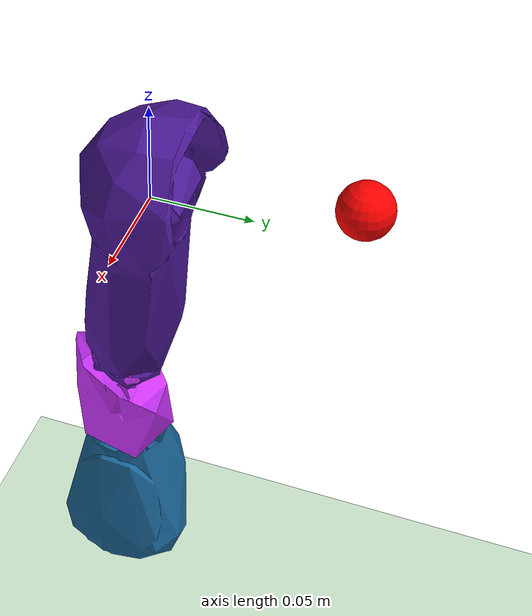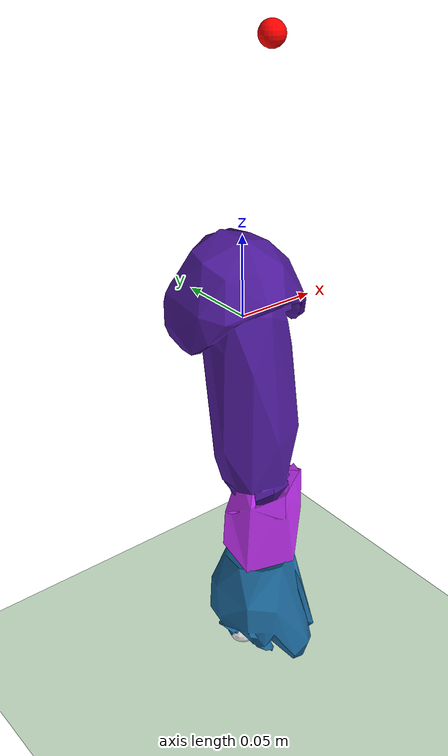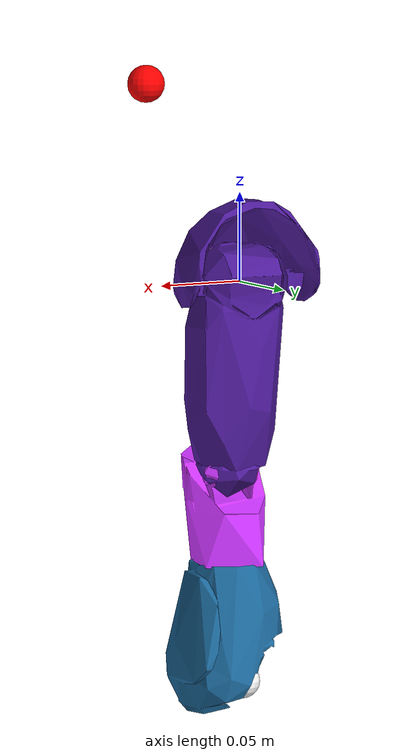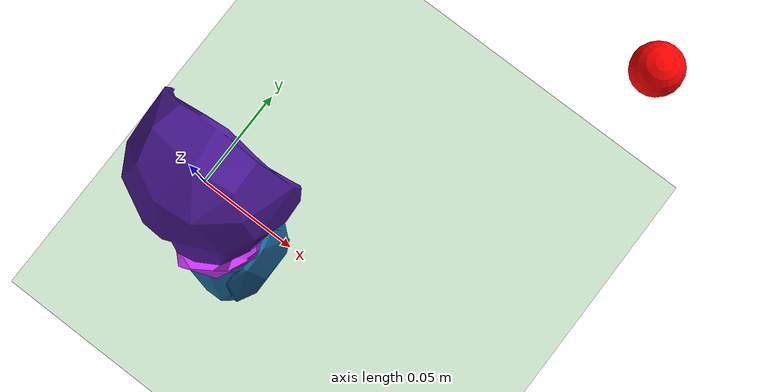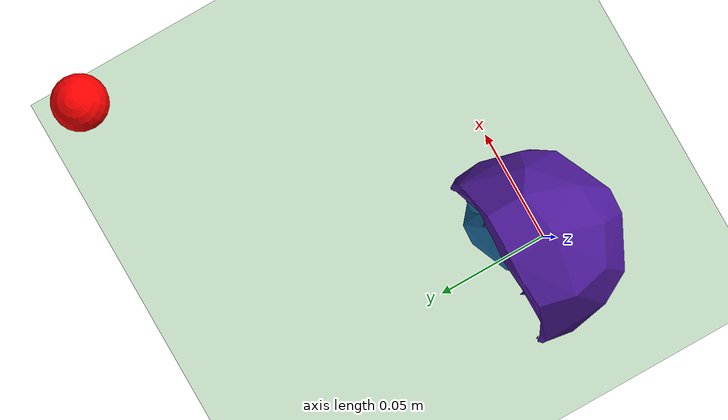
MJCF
<mujoco model="NaoH25V50">
    <compiler angle="radian" meshdir="./nao_meshes/meshes/V40/"/>
    <option integrator="RK4"/>

    <default>
        <joint  armature="1" damping="5"/>
    </default>
    <size njmax="500" nconmax="100" />
    <asset>
        <mesh name="RShoulderPitch_0.10" file="RShoulderPitch_0.10.stl" scale="0.1 0.1 0.1" />
        <mesh name="RShoulderRoll_0.10" file="RShoulderRoll_0.10.stl" scale="0.1 0.1 0.1" />
        <mesh name="RElbowRoll_0.10" file="RElbowRoll_0.10.stl" scale="0.1 0.1 0.1" />
        <mesh name="RWristYaw_0.10" file="RWristYaw_0.10.stl" scale="0.1 0.1 0.1" />
        <texture builtin="checker" height="100" name="texplane" rgb1="0 0 0" rgb2="0.8 0.8 0.8" type="2d" width="100"/>
        <material name="MatPlane" reflectance="0.5" shininess="1" specular="1" texrepeat="60 60" texture="texplane"/>
    </asset>

    <worldbody>
        <geom contype="1" conaffinity="1" condim="3" friction="1 .1 .1" material="MatPlane" name="floor" pos="0 0 -0.335" rgba="0.8 0.9 0.8 1" size="20 20 0.125" type="plane"/>

        <body name="RBicep" pos="0 0 0" quat="1 0 1 0">
            <inertial pos="0.0213201 -0.00466808 0.0004386" quat="0.527557 0.52235 0.47264 0.474811" mass="1.7996" diaginertia="0.00363268 0.00337871 0.000658873" />
            <joint name="RShoulderRoll" pos="0 0 0" axis="0 1 0"  limited="true" range="0 4" type="hinge"/>
            <joint name="RShoulderPitch" pos="0 0 0" axis="0 0 1" limited="true" range="0 2.4" type="hinge"/>
            <geom contype="2" conaffinity="1" type="mesh" rgba="0.3 0.1 0.6 1" mesh="RShoulderRoll_0.10" />

            <body name="RElbow" pos="0.105 -0.015 0">
                <inertial pos="-0.02744 0 -0.00014" quat="-0.000545392 0.711779 -0.000696018 0.702403" mass="0.395499" diaginertia="0.000168578 0.000162384 3.41143e-05" />
                <joint name="RElbowYaw" pos="0 0 0" axis="0 1 0" type="hinge" limited="true" range="0 2.3" />

                <body name="RForeArm" pos="0 0 0">
                    <inertial pos="0.0235942 -0.00369779 0.00274973" quat="0.397369 0.35311 0.66416 0.525645" mass="0.455913" diaginertia="0.000171173 0.000151629 0.000108766" />
                    <joint name="RElbowRoll" pos="0 0 0" axis="0 0 1" limited="true" range="-2.3 0" type="hinge" />
                    <geom contype="2" conaffinity="1" type="mesh" rgba="0.8 0.2 1 1" mesh="RElbowRoll_0.10" />

                    <body name="r_wrist" pos="0.05595 0 0">
                        <inertial pos="0.0432841 -3.00946e-05 0.00454347" quat="0.0130028 0.518963 0.00333335 0.854691" mass="0.93576" diaginertia="0.000578664 0.000517583 0.000351545" />
                        <geom contype="2" conaffinity="1" type="mesh" rgba="0.1 0.4 0.6 1" mesh="RWristYaw_0.10" />

                        <body name="r_gripper" pos="0.05775 0 -0.01213">
                            <inertial pos="0 0 0" mass="1.22011e-05" diaginertia="6.7106e-09 6.7106e-09 6.7106e-09" />
                        </body>

                        <body name="RHandTouchRight_frame" pos="0.035 -0.025 0.0035" quat="0.707105 0 0 -0.707108">
                            <inertial pos="0.035 -0.025 0.0035" quat="0.707105 0 0 -0.707108" mass="0" diaginertia="0 0 0" />
                        </body>

                        <body name="RHandTouchBack_frame" pos="0.038 0 0.025" quat="-0.707108 1.87637e-06 0.707105 1.87637e-06">
                            <site name="reacher" pos="-0.03 0.009 -0.03" size="0.01 0.01 0.01" rgba="1 1 1 1"></site>
                            <inertial pos="0.038 0 0.025" quat="-0.707108 1.87637e-06 0.707105 1.87637e-06" mass="0" diaginertia="0 0 0" />
                        </body>

                        <body name="RHandTouchLeft_frame" pos="0.032 0.025 0.003" quat="0.707105 0 0 0.707108">
                            <inertial pos="0.032 0.025 0.003" quat="0.707105 0 0 0.707108" mass="0" diaginertia="0 0 0" />
                        </body>
                    </body>
                </body>
            </body>
        </body>
        <site name="target" pos="0.125 0.125 0.125" size="0.01 0.01 0.01" rgba="1 0 0 1"></site>
    </worldbody>
    <actuator>

        <motor  ctrllimited="true" ctrlrange="0 2.4" gear="200.0" joint="RShoulderPitch" />
        <motor  ctrllimited="true" ctrlrange="0 4" gear="200.0" joint="RShoulderRoll" />
        <motor  ctrllimited="true" ctrlrange="0 2.3" gear="200.0" joint="RElbowYaw" />
        <motor  ctrllimited="true" ctrlrange="-2.3 0" gear="200.0" joint="RElbowRoll" />

    </actuator>
</mujoco>
